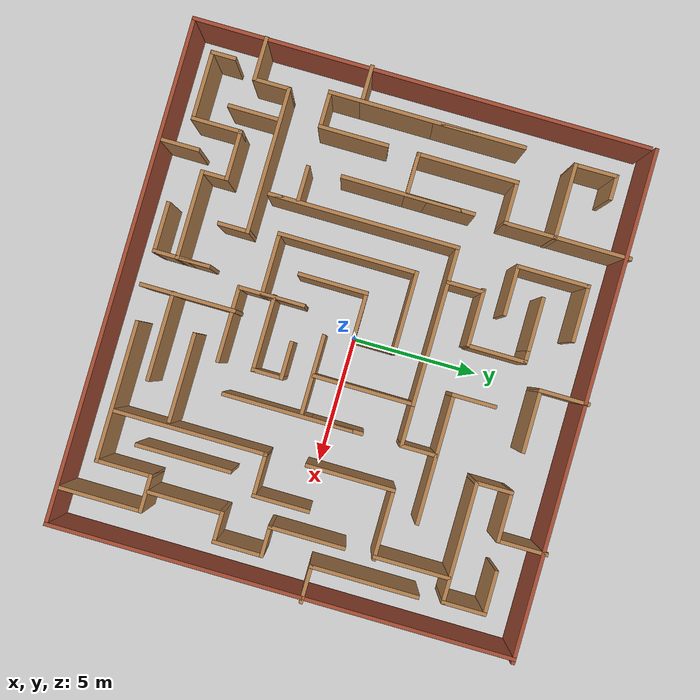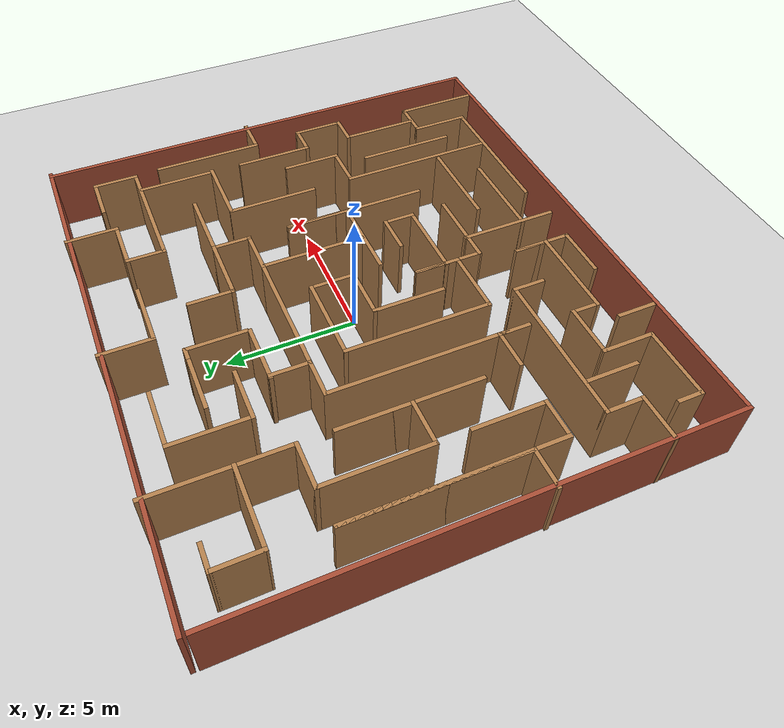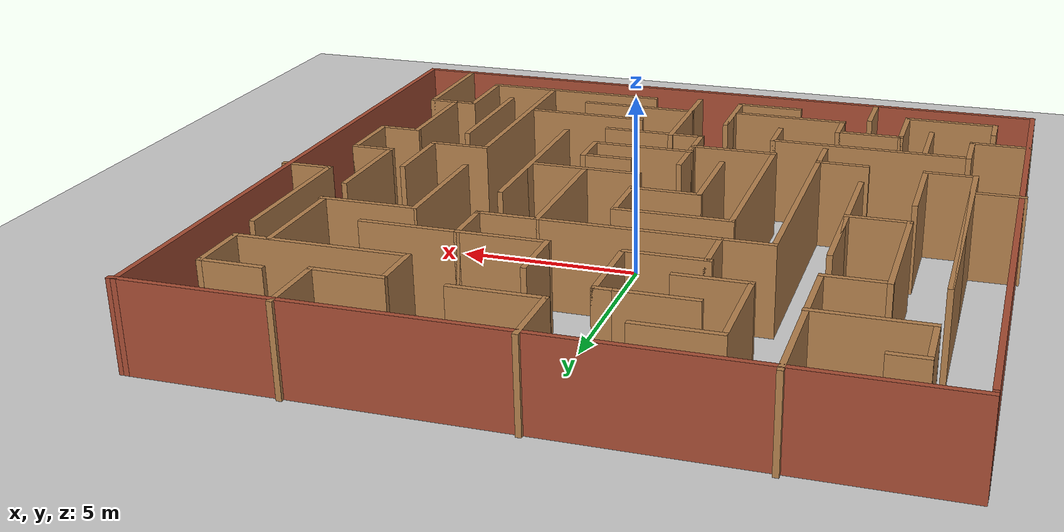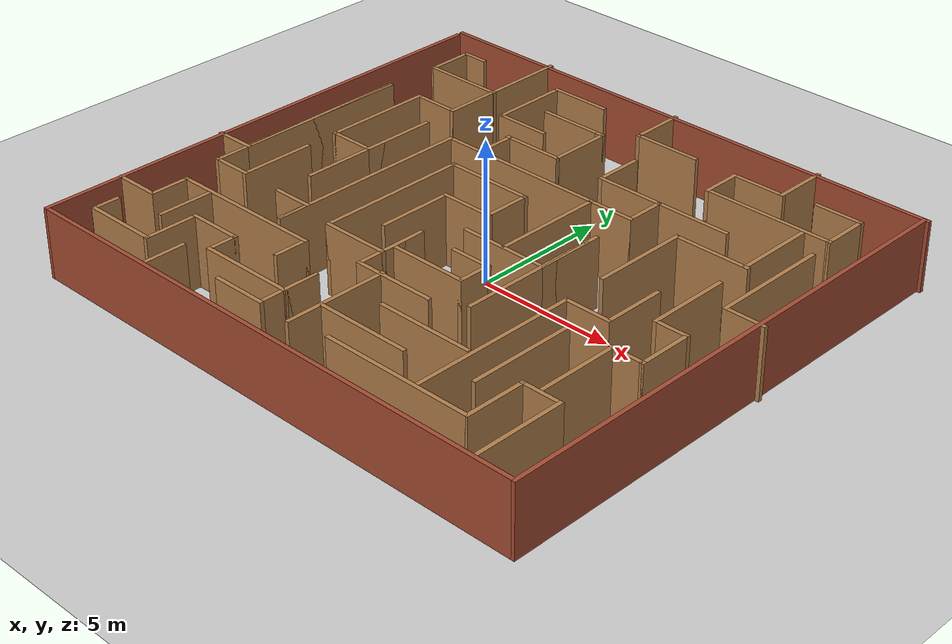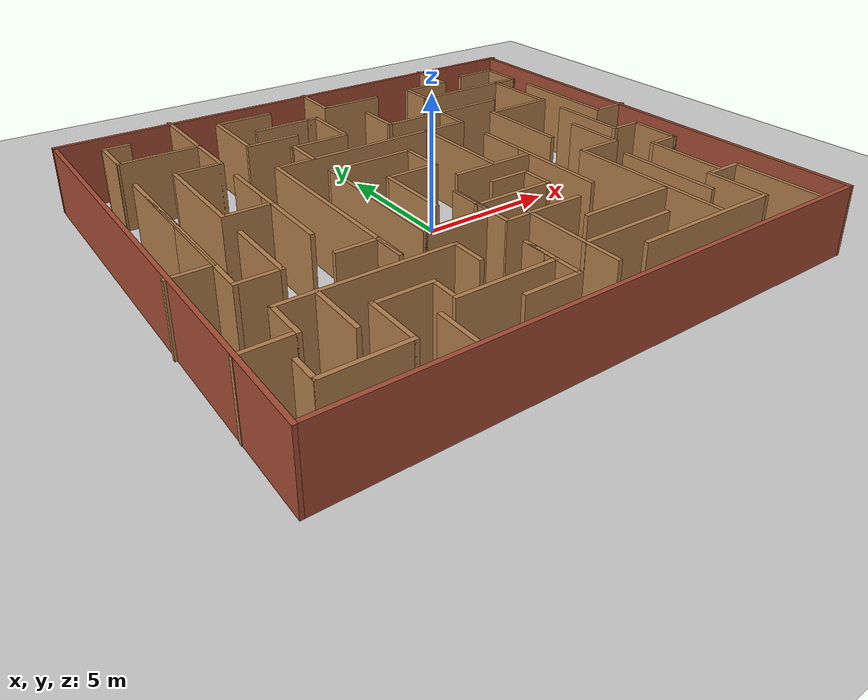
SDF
<sdf version="1.4">
  <world name="default">

    <scene>
      <ambient>0.4 0.4 0.4 1</ambient>
      <background>0.7 0.7 0.7 1</background>
      <shadows>true</shadows>
    </scene>

    <!-- A global light source -->
    <include>
      <uri>model://sun</uri>
    </include>

    <!-- A ground plane -->
    <include>
      <uri>model://ground_plane</uri>
    </include>

    <include>
      <uri>model://complex_maze</uri>
    </include>

    <physics type="ode">
      <real_time_update_rate>1000.0</real_time_update_rate>
      <max_step_size>0.001</max_step_size>
      <real_time_factor>1</real_time_factor>
      <ode>
        <solver>
          <type>quick</type>
          <iters>150</iters>
          <precon_iters>0</precon_iters>
          <sor>1.400000</sor>
          <use_dynamic_moi_rescaling>1</use_dynamic_moi_rescaling>
        </solver>
        <constraints>
          <cfm>0.00001</cfm>
          <erp>0.2</erp>
          <contact_max_correcting_vel>2000.000000</contact_max_correcting_vel>
          <contact_surface_layer>0.01000</contact_surface_layer>
        </constraints>
      </ode>
    </physics>

    <plugin name='gazebo_occupancy_map' filename='libgazebo_2Dmap_plugin.so'>
      <map_resolution>0.1</map_resolution> <!-- in meters, optional, default 0.1 -->
      <map_height>0.3</map_height>         <!-- in meters, optional, default 0.3 -->
      <map_size_x>20</map_size_x>          <!-- in meters, optional, default 10 -->
      <map_size_y>20</map_size_y>          <!-- in meters, optional, default 10 -->
      <init_robot_x>0</init_robot_x>          <!-- x coordinate in meters, optional, default 0 -->
      <init_robot_y>0</init_robot_y>          <!-- y coordinate in meters, optional, default 0 -->
    </plugin>
  </world>

</sdf>
